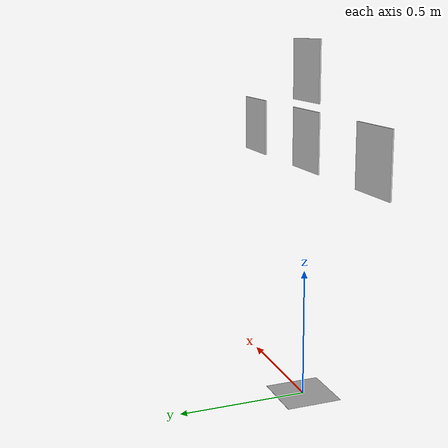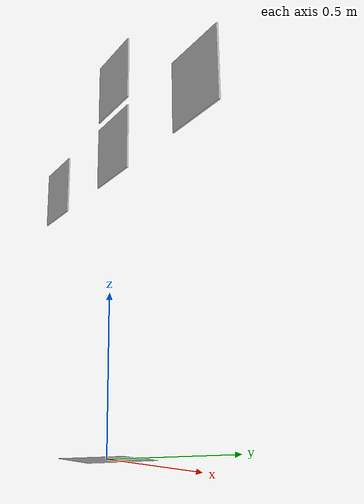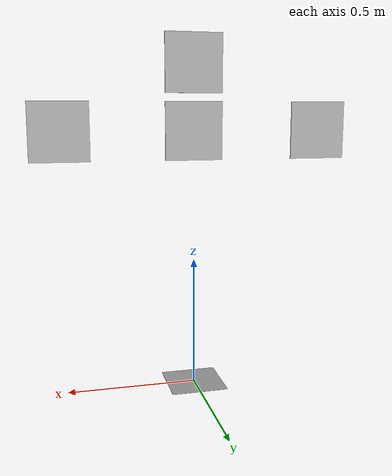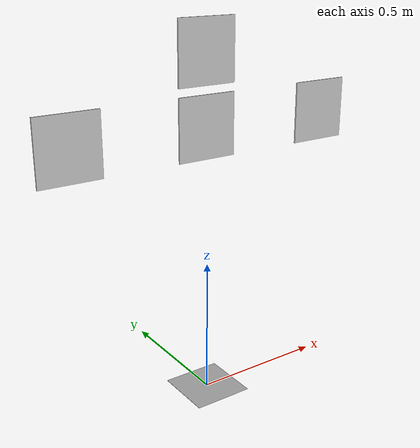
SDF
<?xml version="1.0" ?>
<sdf version="1.4">
  <model name="Aruco Markers">
    <static>true</static>
    <link name="marker781">
      <pose>0 0 1 0 0 -1.57</pose>
      <visual name="marker781_visual">
        <geometry>
	  <mesh>
	    <scale>4.9 4.9 4.9</scale>
	    <uri>model://aruco/meshes/artag_01.dae</uri>
	  </mesh>
        </geometry>
      </visual>
    </link>

    <link name="marker904">
      <pose>0.5 0 1 0 0 -1.57</pose>
      <visual name="marker904_visual">
        <geometry>
          <mesh>
            <scale>4.9 4.9 4.9</scale>
            <uri>model://aruco/meshes/artag_02.dae</uri>
          </mesh>
        </geometry>
      </visual>
    </link>

    <link name="marker644">
      <pose>-0.5 0 1 0 0 -1.57</pose>
      <visual name="marker644_visual">
        <geometry>
          <mesh>
            <scale>4.9 4.9 4.9</scale>
            <uri>model://aruco/meshes/artag_03.dae</uri>
          </mesh>
        </geometry>
      </visual>
    </link>

    <link name="marker341">
      <pose>0 0 1.25 0 0 -1.57</pose>
      <visual name="marker341_visual">
        <geometry>
          <mesh>
            <scale>4.9 4.9 4.9</scale>
            <uri>model://aruco/meshes/artag_04.dae</uri>
          </mesh>
        </geometry>
      </visual>
    </link>

    <link name="box_link">
      <visual name="box_link_visual">
        <geometry>
	  <box>
	    <size>0.22 0.22 0.001</size>
	  </box>
        </geometry>
      </visual>

    </link>

  </model>
</sdf>
